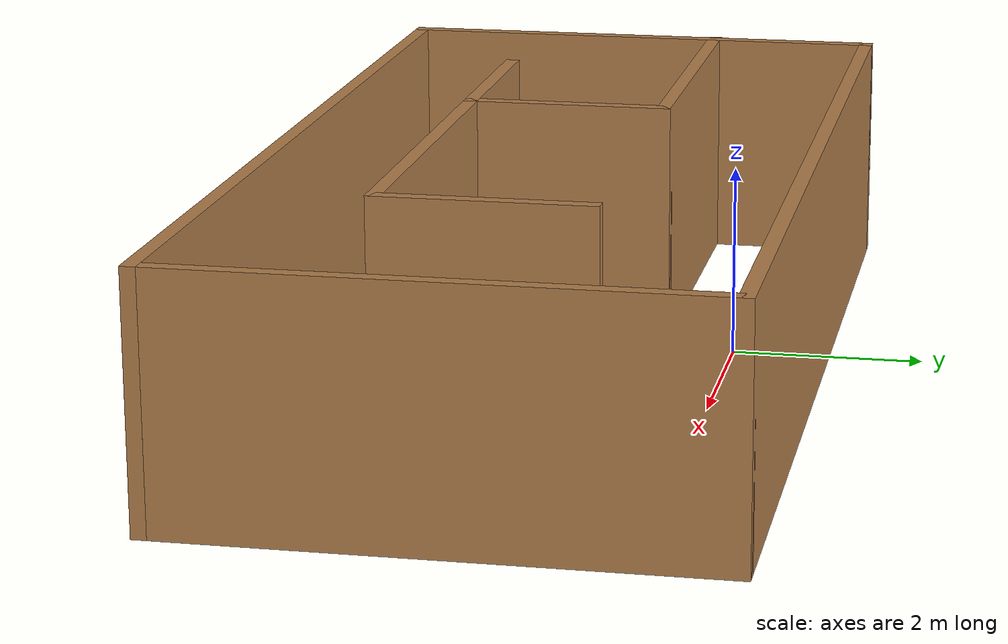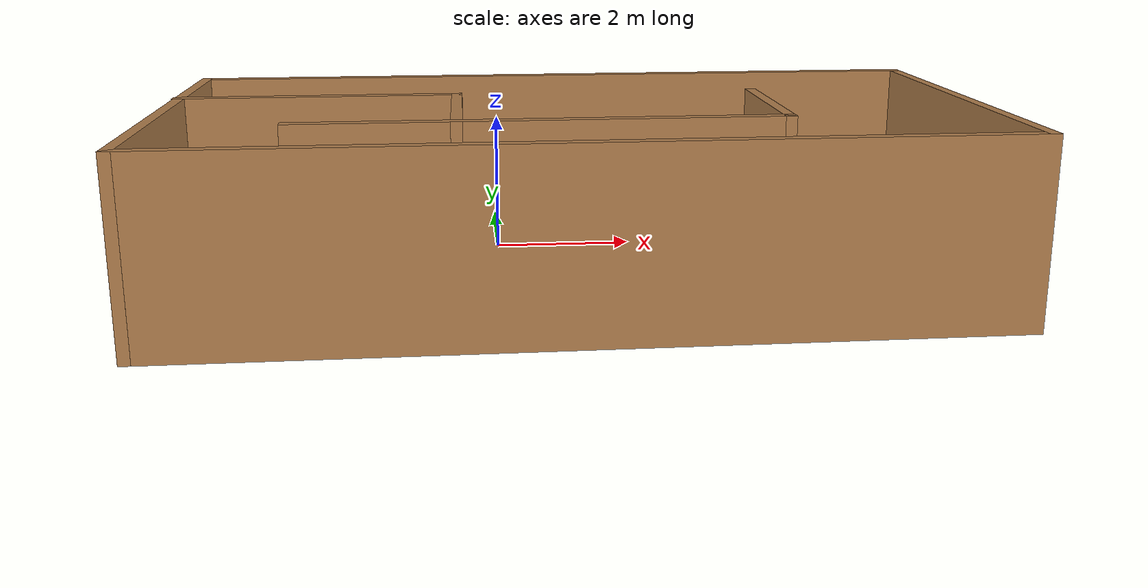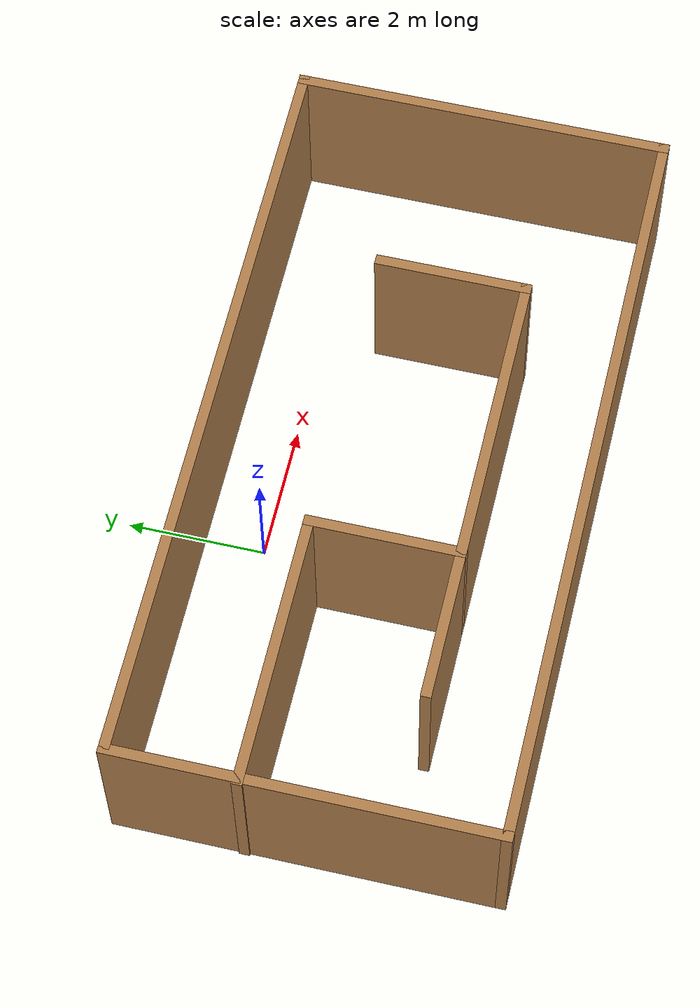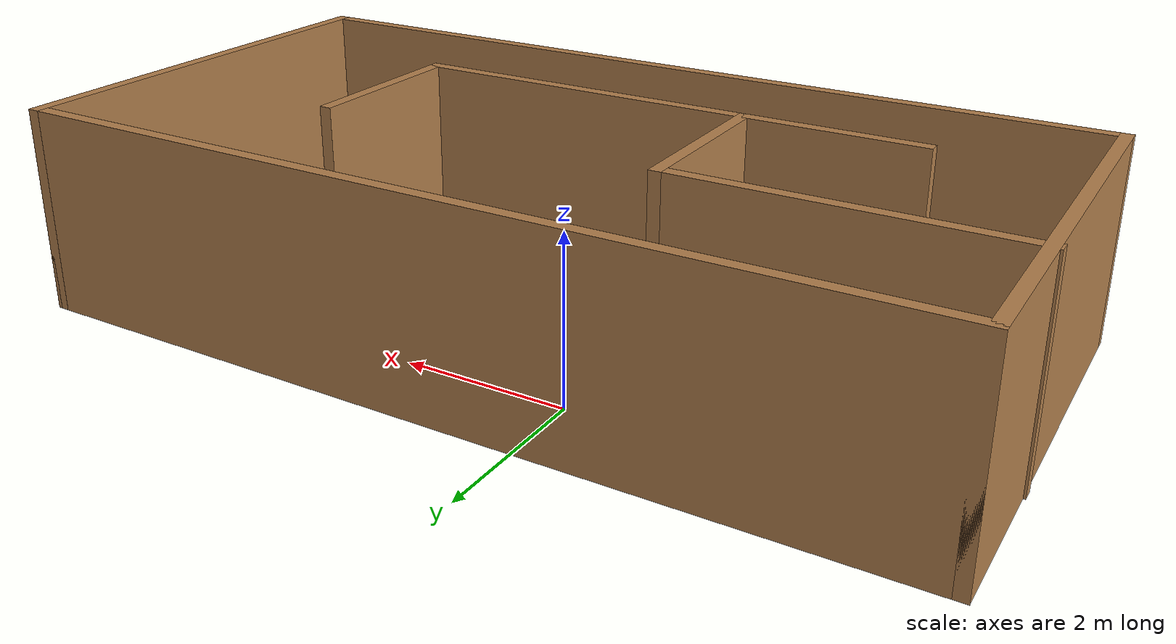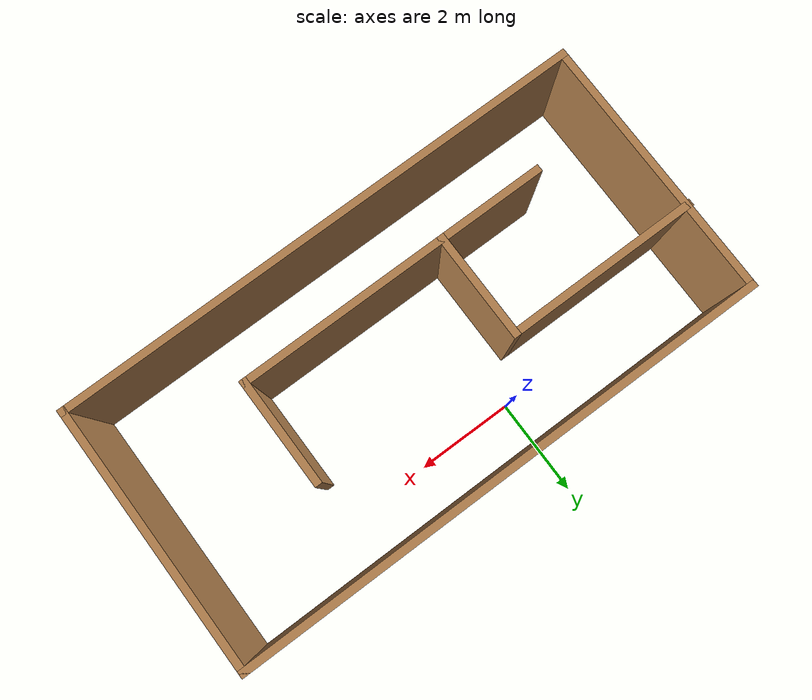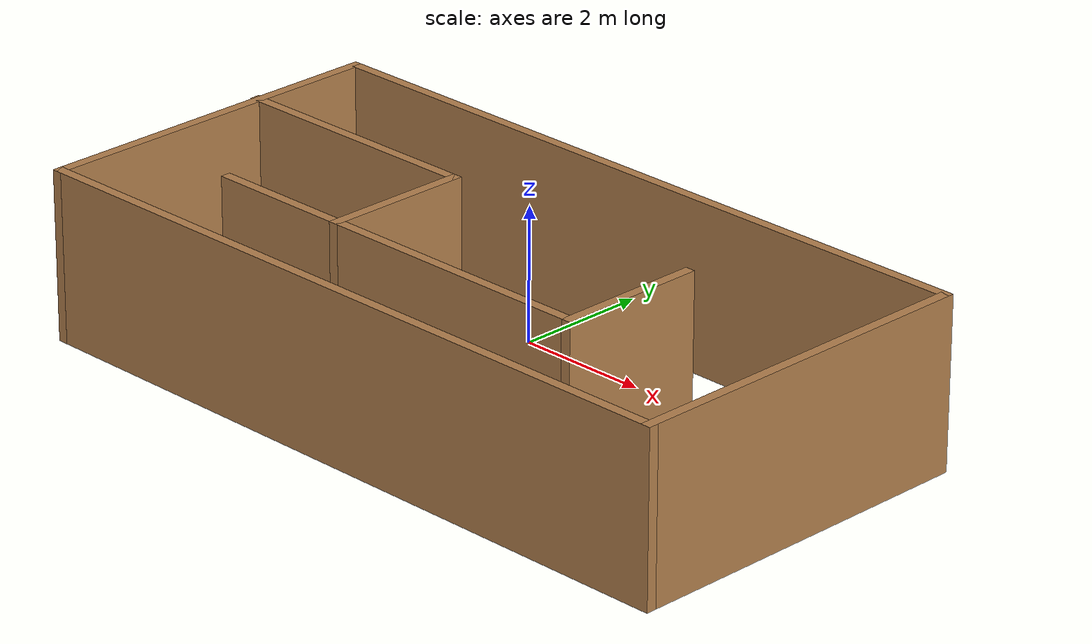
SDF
<?xml version='1.0'?>
<sdf version='1.6'>
  <model name='TrickRoom'>
    <pose frame=''>1.01208 -1.72744 0 0 -0 0</pose>

    <link name='Wall_11'>
      <collision name='Wall_11_Collision'>
        <geometry>
          <box>
            <size>6.5 0.15 2.5</size>
          </box>
        </geometry>
        <pose frame=''>0 0 1.25 0 -0 0</pose>
      </collision>
      <visual name='Wall_11_Visual'>
        <pose frame=''>0 0 1.25 0 -0 0</pose>
        <geometry>
          <box>
            <size>6.5 0.15 2.5</size>
          </box>
        </geometry>
        <material>
          <script>
            <uri>file://media/materials/scripts/gazebo.material</uri>
            <name>Gazebo/Wood</name>
          </script>
          <ambient>1 1 1 1</ambient>
        </material>
        <meta>
          <layer>0</layer>
        </meta>
      </visual>
      <pose frame=''>-0.512923 -1.22566 0 0 -0 0</pose>
    </link>
    <link name='Wall_12'>
      <collision name='Wall_12_Collision'>
        <geometry>
          <box>
            <size>2.25 0.15 2.5</size>
          </box>
        </geometry>
        <pose frame=''>0 0 1.25 0 -0 0</pose>
      </collision>
      <visual name='Wall_12_Visual'>
        <pose frame=''>0 0 1.25 0 -0 0</pose>
        <geometry>
          <box>
            <size>2.25 0.15 2.5</size>
          </box>
        </geometry>
        <material>
          <script>
            <uri>file://media/materials/scripts/gazebo.material</uri>
            <name>Gazebo/Wood</name>
          </script>
          <ambient>1 1 1 1</ambient>
        </material>
        <meta>
          <layer>0</layer>
        </meta>
      </visual>
      <pose frame=''>2.66208 -0.175661 0 0 -0 1.5708</pose>
    </link>
    <link name='Wall_3'>
      <collision name='Wall_3_Collision'>
        <geometry>
          <box>
            <size>5.5 0.15 2.5</size>
          </box>
        </geometry>
        <pose frame=''>0 0 1.25 0 -0 0</pose>
      </collision>
      <visual name='Wall_3_Visual'>
        <pose frame=''>0 0 1.25 0 -0 0</pose>
        <geometry>
          <box>
            <size>5.5 0.15 2.5</size>
          </box>
        </geometry>
        <material>
          <script>
            <uri>file://media/materials/scripts/gazebo.material</uri>
            <name>Gazebo/Wood</name>
          </script>
          <ambient>1 1 1 1</ambient>
        </material>
        <meta>
          <layer>0</layer>
        </meta>
      </visual>
      <pose frame=''>-5.41208 0 0 0 -0 1.5708</pose>
    </link>
    <link name='Wall_4'>
      <collision name='Wall_4_Collision'>
        <geometry>
          <box>
            <size>11 0.15 2.5</size>
          </box>
        </geometry>
        <pose frame=''>0 0 1.25 0 -0 0</pose>
      </collision>
      <visual name='Wall_4_Visual'>
        <pose frame=''>0 0 1.25 0 -0 0</pose>
        <geometry>
          <box>
            <size>11 0.15 2.5</size>
          </box>
        </geometry>
        <material>
          <script>
            <uri>file://media/materials/scripts/gazebo.material</uri>
            <name>Gazebo/Wood</name>
          </script>
          <ambient>1 1 1 1</ambient>
        </material>
        <meta>
          <layer>0</layer>
        </meta>
      </visual>
      <pose frame=''>0.012923 2.675 0 0 -0 0</pose>
    </link>
    <link name='Wall_5'>
      <collision name='Wall_5_Collision'>
        <geometry>
          <box>
            <size>5.5 0.15 2.5</size>
          </box>
        </geometry>
        <pose frame=''>0 0 1.25 0 -0 0</pose>
      </collision>
      <visual name='Wall_5_Visual'>
        <pose frame=''>0 0 1.25 0 -0 0</pose>
        <geometry>
          <box>
            <size>5.5 0.15 2.5</size>
          </box>
        </geometry>
        <material>
          <script>
            <uri>file://media/materials/scripts/gazebo.material</uri>
            <name>Gazebo/Wood</name>
          </script>
          <ambient>1 1 1 1</ambient>
        </material>
        <meta>
          <layer>0</layer>
        </meta>
      </visual>
      <pose frame=''>5.43792 0 0 0 -0 -1.5708</pose>
    </link>
    <link name='Wall_6'>
      <collision name='Wall_6_Collision'>
        <geometry>
          <box>
            <size>11 0.15 2.5</size>
          </box>
        </geometry>
        <pose frame=''>0 0 1.25 0 -0 0</pose>
      </collision>
      <visual name='Wall_6_Visual'>
        <pose frame=''>0 0 1.25 0 -0 0</pose>
        <geometry>
          <box>
            <size>11 0.15 2.5</size>
          </box>
        </geometry>
        <material>
          <script>
            <uri>file://media/materials/scripts/gazebo.material</uri>
            <name>Gazebo/Wood</name>
          </script>
          <ambient>1 1 1 1</ambient>
        </material>
        <meta>
          <layer>0</layer>
        </meta>
      </visual>
      <pose frame=''>0.012923 -2.675 0 0 -0 3.14159</pose>
    </link>
    <link name='Wall_8'>
      <collision name='Wall_8_Collision'>
        <geometry>
          <box>
            <size>4 0.15 2.5</size>
          </box>
        </geometry>
        <pose frame=''>0 0 1.25 0 -0 0</pose>
      </collision>
      <visual name='Wall_8_Visual'>
        <pose frame=''>0 0 1.25 0 -0 0</pose>
        <geometry>
          <box>
            <size>4 0.15 2.5</size>
          </box>
        </geometry>
        <material>
          <script>
            <uri>file://media/materials/scripts/gazebo.material</uri>
            <name>Gazebo/Wood</name>
          </script>
          <ambient>1 1 1 1</ambient>
        </material>
        <meta>
          <layer>0</layer>
        </meta>
      </visual>
      <pose frame=''>-3.51292 0.874339 0 0 -0 0</pose>
    </link>
    <link name='Wall_9'>
      <collision name='Wall_9_Collision'>
        <geometry>
          <box>
            <size>2.25 0.15 2.5</size>
          </box>
        </geometry>
        <pose frame=''>0 0 1.25 0 -0 0</pose>
      </collision>
      <visual name='Wall_9_Visual'>
        <pose frame=''>0 0 1.25 0 -0 0</pose>
        <geometry>
          <box>
            <size>2.25 0.15 2.5</size>
          </box>
        </geometry>
        <material>
          <script>
            <uri>file://media/materials/scripts/gazebo.material</uri>
            <name>Gazebo/Wood</name>
          </script>
          <ambient>1 1 1 1</ambient>
        </material>
        <meta>
          <layer>0</layer>
        </meta>
      </visual>
      <pose frame=''>-1.58792 -0.175661 0 0 -0 -1.5708</pose>
    </link>
    <static>1</static>
  </model>
</sdf>
